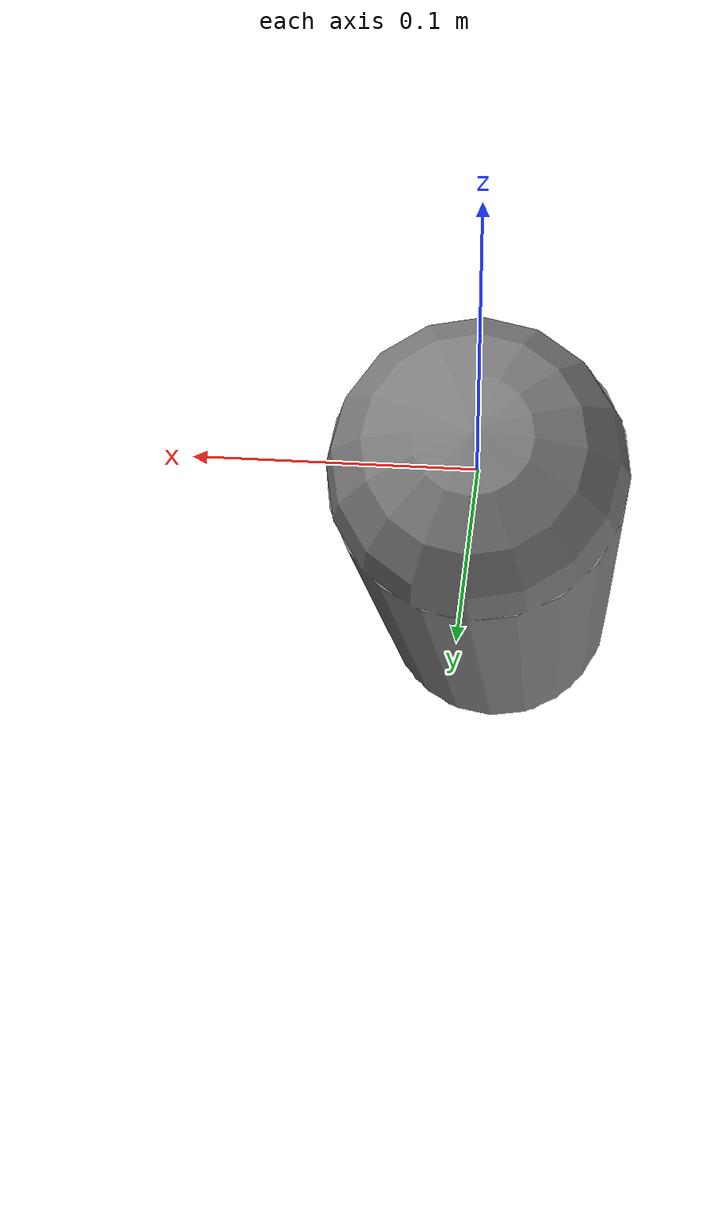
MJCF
<mujoco model="test">
  <compiler angle="radian"/>
  <visual>
    <map force="0.1" zfar="30"/>
    <rgba haze="0.15 0.25 0.35 1"/>
    <global offwidth="2560" offheight="1440" elevation="-20" azimuth="120"/>
  </visual>
  <visual>
    <map force="0.1" zfar="30"/>
    <rgba haze="0.15 0.25 0.35 1"/>
      <!--offwidth="2560" offheight="1440"-->
    <global
      elevation="20"
      azimuth="10"
      />
    <headlight ambient=".8 .8 .8" specular=".8 .8 .8"/>
  </visual>
  <default class="main">
      <joint type="hinge"/>
    <default class="arm_upper">
        <geom type="capsule" size=".04"/>
    </default>
  </default>
  <worldbody>
    <body>
      <geom name="upper_arm_right" fromto="0 0 0 0 -.2 -.2" size=".053" class="arm_upper"/>
      <joint type="hinge" axis="1 0 0"/>
    </body>
  </worldbody>
</mujoco>
